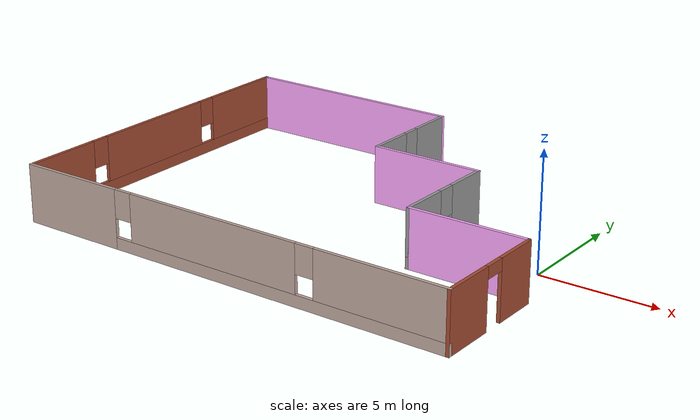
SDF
<?xml version='1.0'?>
<sdf version='1.6'>
  <model name='STRUCTURE'>
    <pose frame=''>-8.99882 -0.151145 0 0 -0 0</pose>
    <link name='Wall_0'>
      <pose frame=''>-9.925 0 0 0 -0 1.57082</pose>
      <visual name='Wall_0_Visual_0'>
        <pose frame=''>-5.76323 0 1.25 0 -0 0</pose>
        <geometry>
          <box>
            <size>3.47353 0.15 2.5</size>
          </box>
        </geometry>
        <material>
          <script>
            <uri>file://media/materials/scripts/gazebo.material</uri>
            <name>Gazebo/Bricks</name>
          </script>
          <ambient>1 1 1 1</ambient>
        </material>
        <meta>
          <layer>0</layer>
        </meta>
      </visual>
      <collision name='Wall_0_Collision_0'>
        <geometry>
          <box>
            <size>3.47353 0.15 2.5</size>
          </box>
        </geometry>
        <pose frame=''>-5.76323 0 1.25 0 -0 0</pose>
      </collision>
      <visual name='Wall_0_Visual_1'>
        <pose frame=''>1.73676 0 0.25 0 -0 0</pose>
        <geometry>
          <box>
            <size>11.5265 0.15 0.5</size>
          </box>
        </geometry>
        <material>
          <script>
            <uri>file://media/materials/scripts/gazebo.material</uri>
            <name>Gazebo/Bricks</name>
          </script>
          <ambient>1 1 1 1</ambient>
        </material>
        <meta>
          <layer>0</layer>
        </meta>
      </visual>
      <collision name='Wall_0_Collision_1'>
        <geometry>
          <box>
            <size>11.5265 0.15 0.5</size>
          </box>
        </geometry>
        <pose frame=''>1.73676 0 0.25 0 -0 0</pose>
      </collision>
      <visual name='Wall_0_Visual_2'>
        <pose frame=''>-0.28256 0 1.5 0 -0 0</pose>
        <geometry>
          <box>
            <size>5.88782 0.15 2</size>
          </box>
        </geometry>
        <material>
          <script>
            <uri>file://media/materials/scripts/gazebo.material</uri>
            <name>Gazebo/Bricks</name>
          </script>
          <ambient>1 1 1 1</ambient>
        </material>
        <meta>
          <layer>0</layer>
        </meta>
      </visual>
      <collision name='Wall_0_Collision_2'>
        <geometry>
          <box>
            <size>5.88782 0.15 2</size>
          </box>
        </geometry>
        <pose frame=''>-0.28256 0 1.5 0 -0 0</pose>
      </collision>
      <visual name='Wall_0_Visual_3'>
        <pose frame=''>5.48067 0 1.5 0 -0 0</pose>
        <geometry>
          <box>
            <size>4.03865 0.15 2</size>
          </box>
        </geometry>
        <material>
          <script>
            <uri>file://media/materials/scripts/gazebo.material</uri>
            <name>Gazebo/Bricks</name>
          </script>
          <ambient>1 1 1 1</ambient>
        </material>
        <meta>
          <layer>0</layer>
        </meta>
      </visual>
      <collision name='Wall_0_Collision_3'>
        <geometry>
          <box>
            <size>4.03865 0.15 2</size>
          </box>
        </geometry>
        <pose frame=''>5.48067 0 1.5 0 -0 0</pose>
      </collision>
      <visual name='Wall_0_Visual_4'>
        <pose frame=''>-3.62647 0 1.9 0 -0 0</pose>
        <geometry>
          <box>
            <size>0.8 0.15 1.2</size>
          </box>
        </geometry>
        <material>
          <script>
            <uri>file://media/materials/scripts/gazebo.material</uri>
            <name>Gazebo/Bricks</name>
          </script>
          <ambient>1 1 1 1</ambient>
        </material>
        <meta>
          <layer>0</layer>
        </meta>
      </visual>
      <collision name='Wall_0_Collision_4'>
        <geometry>
          <box>
            <size>0.8 0.15 1.2</size>
          </box>
        </geometry>
        <pose frame=''>-3.62647 0 1.9 0 -0 0</pose>
      </collision>
      <visual name='Wall_0_Visual_5'>
        <pose frame=''>3.06135 0 1.9 0 -0 0</pose>
        <geometry>
          <box>
            <size>0.8 0.15 1.2</size>
          </box>
        </geometry>
        <material>
          <script>
            <uri>file://media/materials/scripts/gazebo.material</uri>
            <name>Gazebo/Bricks</name>
          </script>
          <ambient>1 1 1 1</ambient>
        </material>
        <meta>
          <layer>0</layer>
        </meta>
      </visual>
      <collision name='Wall_0_Collision_5'>
        <geometry>
          <box>
            <size>0.8 0.15 1.2</size>
          </box>
        </geometry>
        <pose frame=''>3.06135 0 1.9 0 -0 0</pose>
      </collision>
    </link>
    <link name='Wall_10'>
      <collision name='Wall_10_Collision'>
        <geometry>
          <box>
            <size>5.25 0.15 2.5</size>
          </box>
        </geometry>
        <pose frame=''>0 0 1.25 0 -0 0</pose>
      </collision>
      <visual name='Wall_10_Visual'>
        <pose frame=''>0 0 1.25 0 -0 0</pose>
        <geometry>
          <box>
            <size>5.25 0.15 2.5</size>
          </box>
        </geometry>
        <material>
          <script>
            <uri>file://media/materials/scripts/gazebo.material</uri>
            <name>Gazebo/Grey</name>
          </script>
          <ambient>1 0.666667 1 1</ambient>
        </material>
        <meta>
          <layer>0</layer>
        </meta>
      </visual>
      <pose frame=''>7.32518 -2.27514 0 0 -0 0</pose>
    </link>
    <link name='Wall_15'>
      <pose frame=''>0.000182 -7.42514 0 0 -0 0</pose>
      <visual name='Wall_15_Visual_0'>
        <pose frame=''>-7.64788 0 1.25 0 -0 0</pose>
        <geometry>
          <box>
            <size>4.70424 0.15 2.5</size>
          </box>
        </geometry>
        <material>
          <script>
            <uri>file://media/materials/scripts/gazebo.material</uri>
            <name>Gazebo/Grey</name>
          </script>
          <ambient>0.760784 0.662745 0.627451 1</ambient>
        </material>
        <meta>
          <layer>0</layer>
        </meta>
      </visual>
      <collision name='Wall_15_Collision_0'>
        <geometry>
          <box>
            <size>4.70424 0.15 2.5</size>
          </box>
        </geometry>
        <pose frame=''>-7.64788 0 1.25 0 -0 0</pose>
      </collision>
      <visual name='Wall_15_Visual_1'>
        <pose frame=''>2.35212 0 0.25 0 -0 0</pose>
        <geometry>
          <box>
            <size>15.2958 0.15 0.5</size>
          </box>
        </geometry>
        <material>
          <script>
            <uri>file://media/materials/scripts/gazebo.material</uri>
            <name>Gazebo/Grey</name>
          </script>
          <ambient>0.760784 0.662745 0.627451 1</ambient>
        </material>
        <meta>
          <layer>0</layer>
        </meta>
      </visual>
      <collision name='Wall_15_Collision_1'>
        <geometry>
          <box>
            <size>15.2958 0.15 0.5</size>
          </box>
        </geometry>
        <pose frame=''>2.35212 0 0.25 0 -0 0</pose>
      </collision>
      <visual name='Wall_15_Visual_2'>
        <pose frame=''>-0.508559 0 1.5 0 -0 0</pose>
        <geometry>
          <box>
            <size>7.97441 0.15 2</size>
          </box>
        </geometry>
        <material>
          <script>
            <uri>file://media/materials/scripts/gazebo.material</uri>
            <name>Gazebo/Grey</name>
          </script>
          <ambient>0.760784 0.662745 0.627451 1</ambient>
        </material>
        <meta>
          <layer>0</layer>
        </meta>
      </visual>
      <collision name='Wall_15_Collision_2'>
        <geometry>
          <box>
            <size>7.97441 0.15 2</size>
          </box>
        </geometry>
        <pose frame=''>-0.508559 0 1.5 0 -0 0</pose>
      </collision>
      <visual name='Wall_15_Visual_3'>
        <pose frame=''>7.13932 0 1.5 0 -0 0</pose>
        <geometry>
          <box>
            <size>5.72135 0.15 2</size>
          </box>
        </geometry>
        <material>
          <script>
            <uri>file://media/materials/scripts/gazebo.material</uri>
            <name>Gazebo/Grey</name>
          </script>
          <ambient>0.760784 0.662745 0.627451 1</ambient>
        </material>
        <meta>
          <layer>0</layer>
        </meta>
      </visual>
      <collision name='Wall_15_Collision_3'>
        <geometry>
          <box>
            <size>5.72135 0.15 2</size>
          </box>
        </geometry>
        <pose frame=''>7.13932 0 1.5 0 -0 0</pose>
      </collision>
      <visual name='Wall_15_Visual_4'>
        <pose frame=''>-4.89576 0 1.9 0 -0 0</pose>
        <geometry>
          <box>
            <size>0.8 0.15 1.2</size>
          </box>
        </geometry>
        <material>
          <script>
            <uri>file://media/materials/scripts/gazebo.material</uri>
            <name>Gazebo/Grey</name>
          </script>
          <ambient>0.760784 0.662745 0.627451 1</ambient>
        </material>
        <meta>
          <layer>0</layer>
        </meta>
      </visual>
      <collision name='Wall_15_Collision_4'>
        <geometry>
          <box>
            <size>0.8 0.15 1.2</size>
          </box>
        </geometry>
        <pose frame=''>-4.89576 0 1.9 0 -0 0</pose>
      </collision>
      <visual name='Wall_15_Visual_5'>
        <pose frame=''>3.87865 0 1.9 0 -0 0</pose>
        <geometry>
          <box>
            <size>0.8 0.15 1.2</size>
          </box>
        </geometry>
        <material>
          <script>
            <uri>file://media/materials/scripts/gazebo.material</uri>
            <name>Gazebo/Grey</name>
          </script>
          <ambient>0.760784 0.662745 0.627451 1</ambient>
        </material>
        <meta>
          <layer>0</layer>
        </meta>
      </visual>
      <collision name='Wall_15_Collision_5'>
        <geometry>
          <box>
            <size>0.8 0.15 1.2</size>
          </box>
        </geometry>
        <pose frame=''>3.87865 0 1.9 0 -0 0</pose>
      </collision>
    </link>
    <link name='Wall_17'>
      <pose frame=''>9.92518 -4.87514 0 0 -0 1.5708</pose>
      <visual name='Wall_17_Visual_0'>
        <pose frame=''>-1.44819 0 1.25 0 -0 0</pose>
        <geometry>
          <box>
            <size>2.35363 0.15 2.5</size>
          </box>
        </geometry>
        <material>
          <script>
            <uri>file://media/materials/scripts/gazebo.material</uri>
            <name>Gazebo/Bricks</name>
          </script>
          <ambient>1 1 1 1</ambient>
        </material>
        <meta>
          <layer>0</layer>
        </meta>
      </visual>
      <collision name='Wall_17_Collision_0'>
        <geometry>
          <box>
            <size>2.35363 0.15 2.5</size>
          </box>
        </geometry>
        <pose frame=''>-1.44819 0 1.25 0 -0 0</pose>
      </collision>
      <visual name='Wall_17_Visual_1'>
        <pose frame=''>1.62681 0 1.25 0 -0 0</pose>
        <geometry>
          <box>
            <size>1.99637 0.15 2.5</size>
          </box>
        </geometry>
        <material>
          <script>
            <uri>file://media/materials/scripts/gazebo.material</uri>
            <name>Gazebo/Bricks</name>
          </script>
          <ambient>1 1 1 1</ambient>
        </material>
        <meta>
          <layer>0</layer>
        </meta>
      </visual>
      <collision name='Wall_17_Collision_1'>
        <geometry>
          <box>
            <size>1.99637 0.15 2.5</size>
          </box>
        </geometry>
        <pose frame=''>1.62681 0 1.25 0 -0 0</pose>
      </collision>
      <visual name='Wall_17_Visual_2'>
        <pose frame=''>0.178628 0 2.25 0 -0 0</pose>
        <geometry>
          <box>
            <size>0.9 0.15 0.5</size>
          </box>
        </geometry>
        <material>
          <script>
            <uri>file://media/materials/scripts/gazebo.material</uri>
            <name>Gazebo/Bricks</name>
          </script>
          <ambient>1 1 1 1</ambient>
        </material>
        <meta>
          <layer>0</layer>
        </meta>
      </visual>
      <collision name='Wall_17_Collision_2'>
        <geometry>
          <box>
            <size>0.9 0.15 0.5</size>
          </box>
        </geometry>
        <pose frame=''>0.178628 0 2.25 0 -0 0</pose>
      </collision>
    </link>
    <link name='Wall_2'>
      <collision name='Wall_2_Collision'>
        <geometry>
          <box>
            <size>10 0.15 2.5</size>
          </box>
        </geometry>
        <pose frame=''>0 0 1.25 0 -0 0</pose>
      </collision>
      <visual name='Wall_2_Visual'>
        <pose frame=''>0 0 1.25 0 -0 0</pose>
        <geometry>
          <box>
            <size>10 0.15 2.5</size>
          </box>
        </geometry>
        <material>
          <script>
            <uri>file://media/materials/scripts/gazebo.material</uri>
            <name>Gazebo/Grey</name>
          </script>
          <ambient>1 0.666667 1 1</ambient>
        </material>
        <meta>
          <layer>0</layer>
        </meta>
      </visual>
      <pose frame=''>-5.00018 7.42514 0 0 -0 0</pose>
    </link>
    <link name='Wall_4'>
      <pose frame=''>-0.074999 5 0 0 0 -1.57072</pose>
      <visual name='Wall_4_Visual_0'>
        <pose frame=''>-1.44372 0 1.25 0 -0 0</pose>
        <geometry>
          <box>
            <size>2.11257 0.15 2.5</size>
          </box>
        </geometry>
        <material>
          <script>
            <uri>file://media/materials/scripts/gazebo.material</uri>
            <name>Gazebo/Grey</name>
          </script>
          <ambient>1 1 1 1</ambient>
        </material>
        <meta>
          <layer>0</layer>
        </meta>
      </visual>
      <collision name='Wall_4_Collision_0'>
        <geometry>
          <box>
            <size>2.11257 0.15 2.5</size>
          </box>
        </geometry>
        <pose frame=''>-1.44372 0 1.25 0 -0 0</pose>
      </collision>
      <visual name='Wall_4_Visual_1'>
        <pose frame=''>1.05628 0 0.25 0 -0 0</pose>
        <geometry>
          <box>
            <size>2.88743 0.15 0.5</size>
          </box>
        </geometry>
        <material>
          <script>
            <uri>file://media/materials/scripts/gazebo.material</uri>
            <name>Gazebo/Grey</name>
          </script>
          <ambient>1 1 1 1</ambient>
        </material>
        <meta>
          <layer>0</layer>
        </meta>
      </visual>
      <collision name='Wall_4_Collision_1'>
        <geometry>
          <box>
            <size>2.88743 0.15 0.5</size>
          </box>
        </geometry>
        <pose frame=''>1.05628 0 0.25 0 -0 0</pose>
      </collision>
      <visual name='Wall_4_Visual_2'>
        <pose frame=''>1.45628 0 1.5 0 -0 0</pose>
        <geometry>
          <box>
            <size>2.08743 0.15 2</size>
          </box>
        </geometry>
        <material>
          <script>
            <uri>file://media/materials/scripts/gazebo.material</uri>
            <name>Gazebo/Grey</name>
          </script>
          <ambient>1 1 1 1</ambient>
        </material>
        <meta>
          <layer>0</layer>
        </meta>
      </visual>
      <collision name='Wall_4_Collision_2'>
        <geometry>
          <box>
            <size>2.08743 0.15 2</size>
          </box>
        </geometry>
        <pose frame=''>1.45628 0 1.5 0 -0 0</pose>
      </collision>
      <visual name='Wall_4_Visual_3'>
        <pose frame=''>0.012568 0 1.9 0 -0 0</pose>
        <geometry>
          <box>
            <size>0.8 0.15 1.2</size>
          </box>
        </geometry>
        <material>
          <script>
            <uri>file://media/materials/scripts/gazebo.material</uri>
            <name>Gazebo/Grey</name>
          </script>
          <ambient>1 1 1 1</ambient>
        </material>
        <meta>
          <layer>0</layer>
        </meta>
      </visual>
      <collision name='Wall_4_Collision_3'>
        <geometry>
          <box>
            <size>0.8 0.15 1.2</size>
          </box>
        </geometry>
        <pose frame=''>0.012568 0 1.9 0 -0 0</pose>
      </collision>
    </link>
    <link name='Wall_6'>
      <collision name='Wall_6_Collision'>
        <geometry>
          <box>
            <size>5 0.15 2.5</size>
          </box>
        </geometry>
        <pose frame=''>0 0 1.25 0 -0 0</pose>
      </collision>
      <visual name='Wall_6_Visual'>
        <pose frame=''>0 0 1.25 0 -0 0</pose>
        <geometry>
          <box>
            <size>5 0.15 2.5</size>
          </box>
        </geometry>
        <material>
          <script>
            <uri>file://media/materials/scripts/gazebo.material</uri>
            <name>Gazebo/Grey</name>
          </script>
          <ambient>1 0.666667 1 1</ambient>
        </material>
        <meta>
          <layer>0</layer>
        </meta>
      </visual>
      <pose frame=''>2.35018 2.57486 0 0 -0 0</pose>
    </link>
    <link name='Wall_8'>
      <pose frame=''>4.77518 0.149856 0 0 0 -1.5708</pose>
      <visual name='Wall_8_Visual_0'>
        <pose frame=''>-1.48793 0 1.25 0 -0 0</pose>
        <geometry>
          <box>
            <size>2.02414 0.15 2.5</size>
          </box>
        </geometry>
        <material>
          <script>
            <uri>file://media/materials/scripts/gazebo.material</uri>
            <name>Gazebo/Grey</name>
          </script>
          <ambient>1 1 1 1</ambient>
        </material>
        <meta>
          <layer>0</layer>
        </meta>
      </visual>
      <collision name='Wall_8_Collision_0'>
        <geometry>
          <box>
            <size>2.02414 0.15 2.5</size>
          </box>
        </geometry>
        <pose frame=''>-1.48793 0 1.25 0 -0 0</pose>
      </collision>
      <visual name='Wall_8_Visual_1'>
        <pose frame=''>1.01207 0 0.25 0 -0 0</pose>
        <geometry>
          <box>
            <size>2.97586 0.15 0.5</size>
          </box>
        </geometry>
        <material>
          <script>
            <uri>file://media/materials/scripts/gazebo.material</uri>
            <name>Gazebo/Grey</name>
          </script>
          <ambient>1 1 1 1</ambient>
        </material>
        <meta>
          <layer>0</layer>
        </meta>
      </visual>
      <collision name='Wall_8_Collision_1'>
        <geometry>
          <box>
            <size>2.97586 0.15 0.5</size>
          </box>
        </geometry>
        <pose frame=''>1.01207 0 0.25 0 -0 0</pose>
      </collision>
      <visual name='Wall_8_Visual_2'>
        <pose frame=''>1.41207 0 1.5 0 -0 0</pose>
        <geometry>
          <box>
            <size>2.17586 0.15 2</size>
          </box>
        </geometry>
        <material>
          <script>
            <uri>file://media/materials/scripts/gazebo.material</uri>
            <name>Gazebo/Grey</name>
          </script>
          <ambient>1 1 1 1</ambient>
        </material>
        <meta>
          <layer>0</layer>
        </meta>
      </visual>
      <collision name='Wall_8_Collision_2'>
        <geometry>
          <box>
            <size>2.17586 0.15 2</size>
          </box>
        </geometry>
        <pose frame=''>1.41207 0 1.5 0 -0 0</pose>
      </collision>
      <visual name='Wall_8_Visual_3'>
        <pose frame=''>-0.075858 0 1.9 0 -0 0</pose>
        <geometry>
          <box>
            <size>0.8 0.15 1.2</size>
          </box>
        </geometry>
        <material>
          <script>
            <uri>file://media/materials/scripts/gazebo.material</uri>
            <name>Gazebo/Grey</name>
          </script>
          <ambient>1 1 1 1</ambient>
        </material>
        <meta>
          <layer>0</layer>
        </meta>
      </visual>
      <collision name='Wall_8_Collision_3'>
        <geometry>
          <box>
            <size>0.8 0.15 1.2</size>
          </box>
        </geometry>
        <pose frame=''>-0.075858 0 1.9 0 -0 0</pose>
      </collision>
    </link>
    <static>1</static>
  </model>
</sdf>
